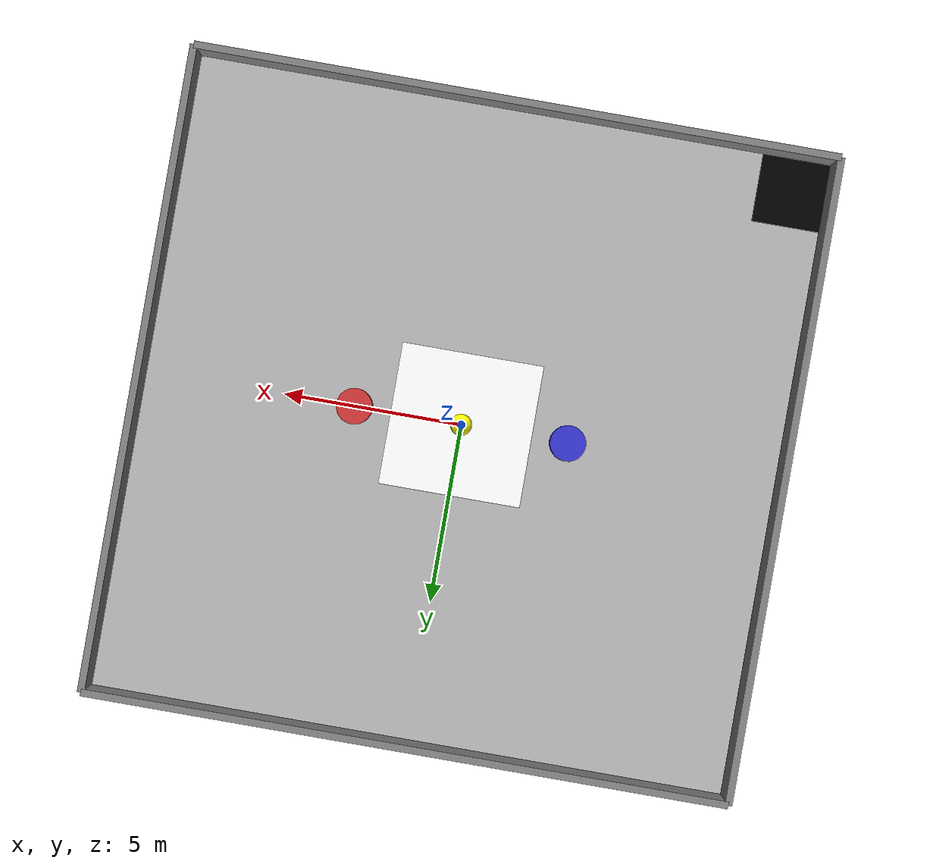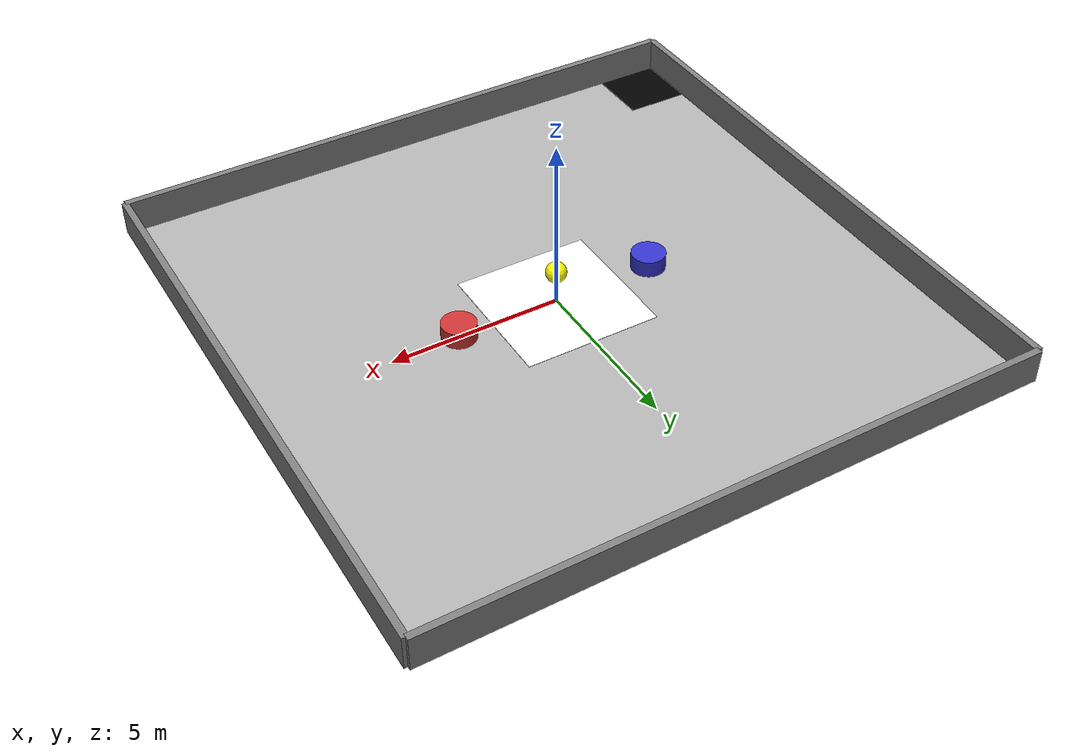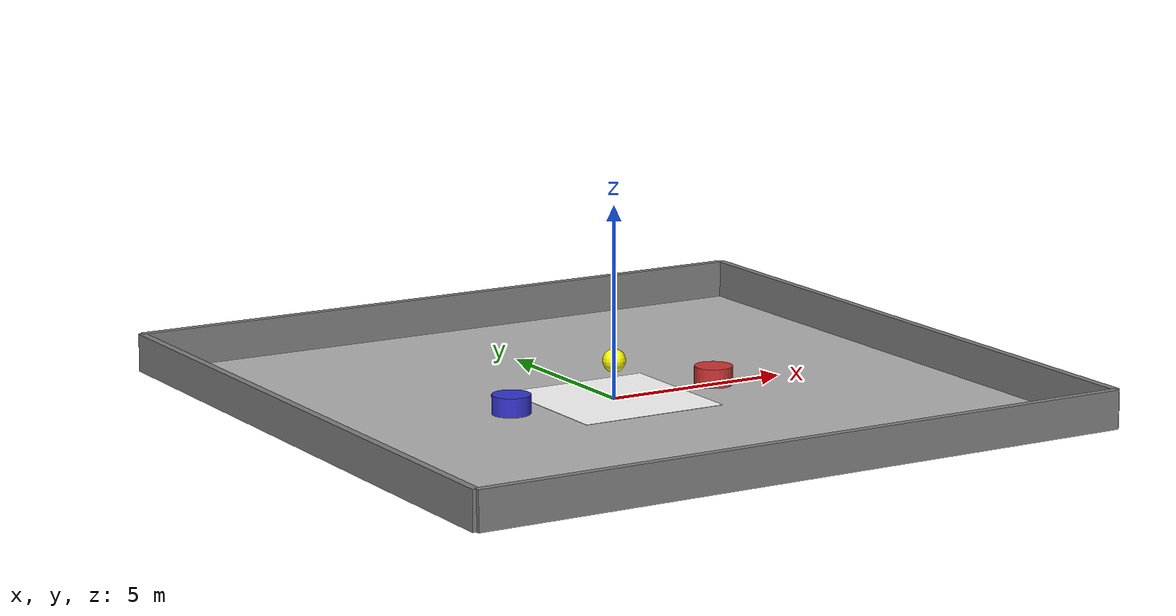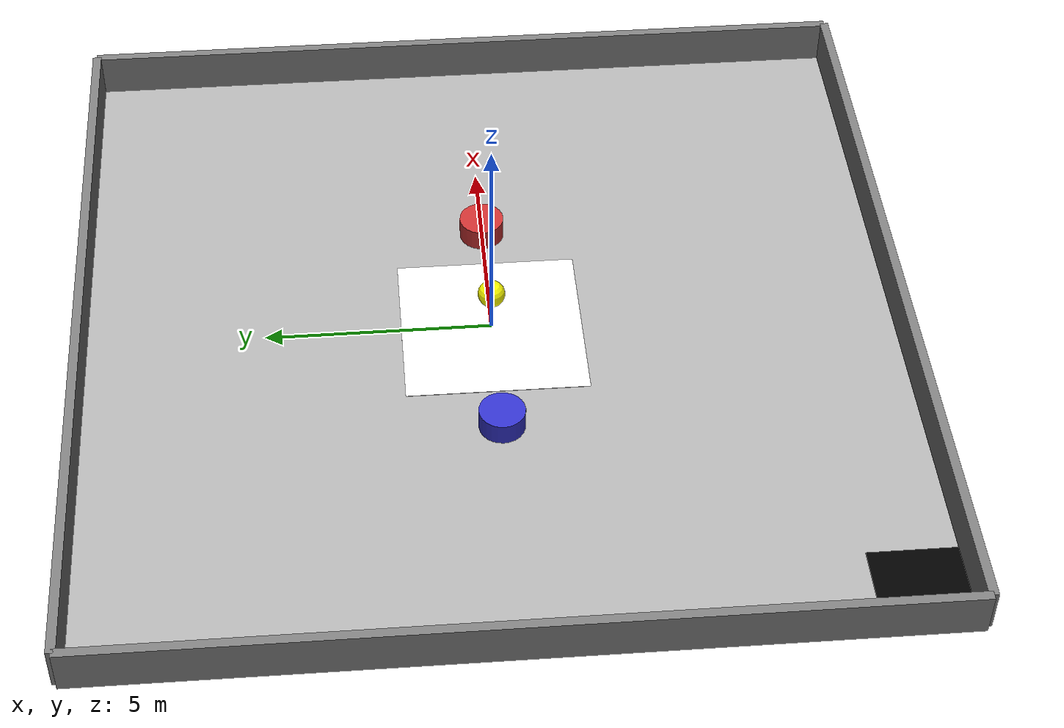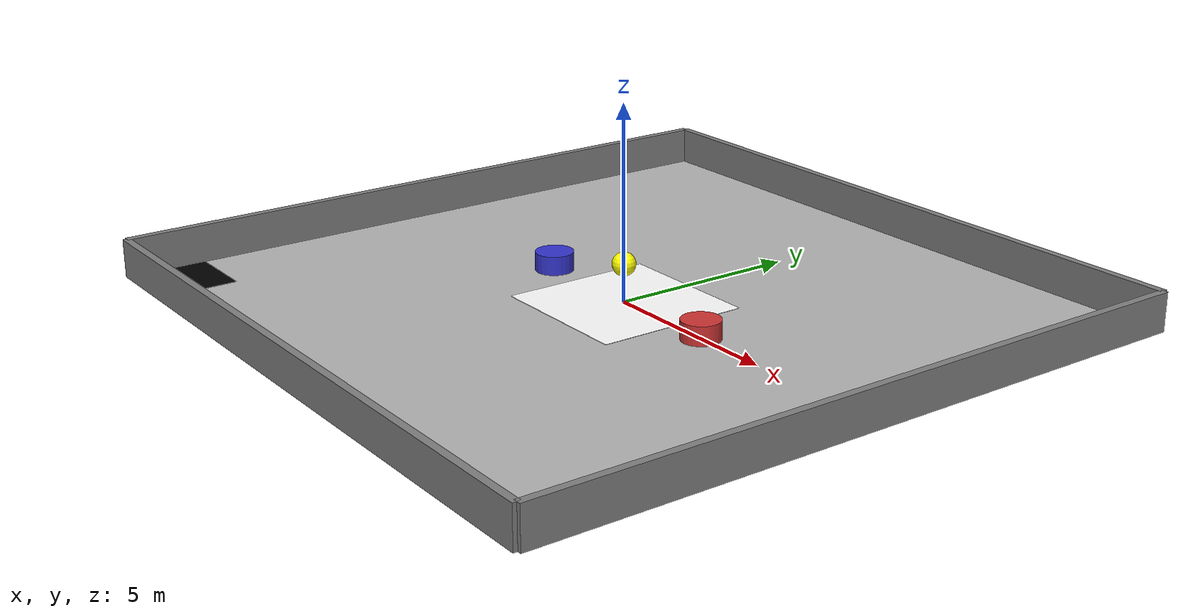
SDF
<?xml version='1.0' encoding='ASCII'?>
<sdf version='1.7'>
  <world name='white'>

    <physics type="ode">
      <max_step_size>0.009</max_step_size>
      <real_time_factor>5.0</real_time_factor>
    </physics>

    <scene>
      <ambient>1 1 1 1</ambient>
      <background>1 1 1 1</background> <!-- white background -->
      <shadows>0</shadows>
      <grid>false</grid>
    </scene>

    <plugin name="gz::sim::systems::Physics" filename="gz-sim-physics-system" />
    <plugin name="gz::sim::systems::UserCommands" filename="gz-sim-user-commands-system" />
    <plugin name="gz::sim::systems::SceneBroadcaster" filename="gz-sim-scene-broadcaster-system" />
    <plugin name="gz::sim::systems::Contact" filename="gz-sim-contact-system" />
    <plugin name="gz::sim::systems::Sensors" filename="gz-sim-sensors-system">
        <render_engine>ogre2</render_engine>
    </plugin>

    <!-- Flat white floor -->
    <model name="grey_floor">
      <static>true</static>
      <pose>0 0 0 0 0 0</pose>
      <link name="link">
        <visual name="visual">
          <geometry>
            <box>
              <size>18 18 0.01</size>
            </box>
          </geometry>
          <material>
            <ambient>0.7 0.7 0.7 1</ambient>
            <diffuse>0.7 0.7 0.7 1</diffuse>
          </material>
        </visual>
        <collision name="collision">
          <geometry>
            <box>
              <size>18 18 0.01</size>
            </box>
          </geometry>
        </collision>
      </link>
    </model>

    <!-- Light marker object at (6, 6, 0.25) -->
    <model name="light_marker">
      <static>true</static>
      <pose>0 0 1.0 0 0 0</pose> <!-- Centered at (0,0), 1 meter above the floor -->
      <link name="link">
        <visual name="visual">
          <geometry>
            <sphere>
              <radius>0.3</radius>
            </sphere>
          </geometry>
          <material>
            <ambient>1 1 0 1</ambient> <!-- Yellow color -->
            <diffuse>1 1 0 1</diffuse>
          </material>
        </visual>
        <collision name="collision">
          <geometry>
            <sphere>
              <radius>0.3</radius>
            </sphere>
          </geometry>
        </collision>
      </link>
    </model>

    <!-- Black patch (small area) -->
    <model name="black_patch">
    <static>true</static>
      <pose>-8 -8 0.01 0 0 0</pose>
      <link name="link">
        <visual name="visual">
          <geometry>
            <box>
              <size>2 2 0.01</size>
            </box>
          </geometry>
          <material>
            <ambient>0 0 0 1</ambient>
            <diffuse>0 0 0 1</diffuse>
          </material>
        </visual>
        <collision name="collision">
          <geometry>
            <box>
              <size>2 2 0.01</size>
            </box>
          </geometry>
        </collision>
      </link>
    </model>

    <model name="white_patch">
      <static>true</static>
      <pose>0 0 0.011 0 0 0</pose> <!-- Slightly above the grey floor -->
      <link name="link">
        <visual name="visual">
          <geometry>
            <box>
              <size>4 4 0.01</size>
            </box>
          </geometry>
          <material>
            <ambient>1 1 1 1</ambient>
            <diffuse>1 1 1 1</diffuse>
          </material>
        </visual>
        <collision name="collision">
          <geometry>
            <box>
              <size>4 4 0.01</size>
            </box>
          </geometry>
        </collision>
      </link>
    </model>

    <!-- Surrounding walls (4 walls) -->
    <model name="wall_north">
      <static>true</static>
      <pose>0 9 0.5 0 0 0</pose>
      <link name="link">
        <visual name="visual">
          <geometry>
            <box>
              <size>18 0.2 1</size>
            </box>
          </geometry>
          <material>
            <ambient>0.5 0.5 0.5 1</ambient>
            <diffuse>0.5 0.5 0.5 1</diffuse>
          </material>
        </visual>
        <collision name="collision">
          <geometry>
            <box>
              <size>18 0.2 1</size>
            </box>
          </geometry>
        </collision>
      </link>
    </model>
    <model name="wall_south">
      <static>true</static>
      <pose>0 -9 0.5 0 0 0</pose>
      <link name="link">
        <visual name="visual">
          <geometry>
            <box>
              <size>18 0.2 1</size>
            </box>
          </geometry>
          <material>
            <ambient>0.5 0.5 0.5 1</ambient>
            <diffuse>0.5 0.5 0.5 1</diffuse>
          </material>
        </visual>
        <collision name="collision">
          <geometry>
            <box>
              <size>18 0.2 1</size>
            </box>
          </geometry>
        </collision>
      </link>
    </model>
    <model name="wall_east">
      <static>true</static>
      <pose>9 0 0.5 0 0 0</pose>
      <link name="link">
        <visual name="visual">
          <geometry>
            <box>
              <size>0.2 18 1</size>
            </box>
          </geometry>
          <material>
            <ambient>0.5 0.5 0.5 1</ambient>
            <diffuse>0.5 0.5 0.5 1</diffuse>
          </material>
        </visual>
        <collision name="collision">
          <geometry>
            <box>
              <size>0.2 18 1</size>
            </box>
          </geometry>
        </collision>
      </link>
    </model>
    <model name="wall_west">
      <static>true</static>
      <pose>-9 0 0.5 0 0 0</pose>
      <link name="link">
        <visual name="visual">
          <geometry>
            <box>
              <size>0.2 18 1</size>
            </box>
          </geometry>
          <material>
            <ambient>0.5 0.5 0.5 1</ambient>
            <diffuse>0.5 0.5 0.5 1</diffuse>
          </material>
        </visual>
        <collision name="collision">
          <geometry>
            <box>
              <size>0.2 18 1</size>
            </box>
          </geometry>
        </collision>
      </link>
    </model>

    <!-- Two obstacles -->
    <model name="obstacle1">
      <pose>3 0 0.25 0 0 0</pose>
      <link name="link">
        <visual name="visual">
          <geometry>
            <cylinder>
              <radius>0.5</radius>
              <length>0.5</length>
            </cylinder>
          </geometry>
          <material>
            <ambient>0.8 0.2 0.2 1</ambient>
            <diffuse>0.8 0.2 0.2 1</diffuse>
          </material>
        </visual>
        <collision name="collision">
          <geometry>
            <cylinder>
              <radius>0.5</radius>
              <length>0.5</length>
            </cylinder>
          </geometry>
        </collision>
      </link>
    </model>
    <model name="obstacle2">
      <pose>-3 0 0.25 0 0 0</pose>
      <link name="link">
        <visual name="visual">
          <geometry>
            <cylinder>
              <radius>0.5</radius>
              <length>0.5</length>
            </cylinder>
          </geometry>
          <material>
            <ambient>0.2 0.2 0.8 1</ambient>
            <diffuse>0.2 0.2 0.8 1</diffuse>
          </material>
        </visual>
        <collision name="collision">
          <geometry>
            <cylinder>
              <radius>0.5</radius>
              <length>0.5</length>
            </cylinder>
          </geometry>
        </collision>
      </link>
    </model>

  </world>
</sdf>
